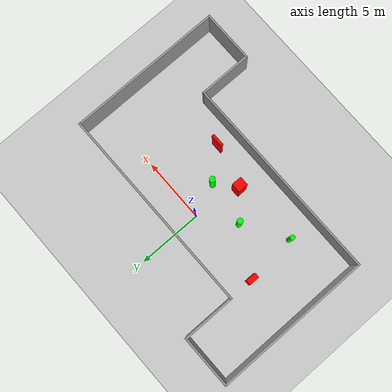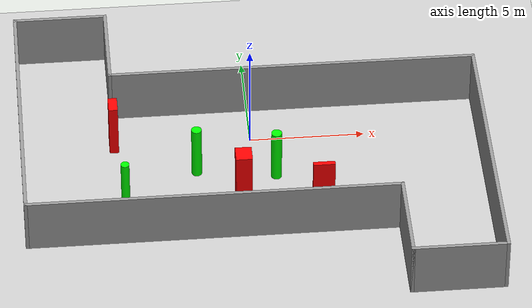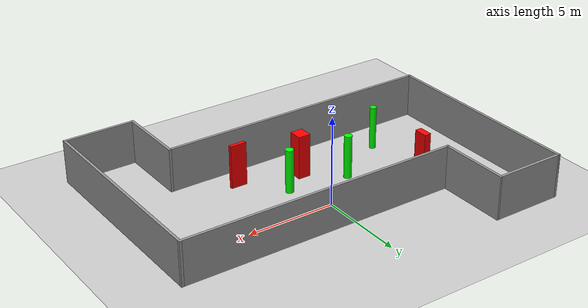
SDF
<sdf version="1.7">
 <world name="default">
  <light name="sun" type="directional">
   <pose>0 0 10 0 -0 0</pose>
   <diffuse>0.8 0.8 0.8 1</diffuse>
   <specular>0.2 0.2 0.2 1</specular>
   <attenuation>
    <range>1000</range>
    <constant>0.9</constant>
    <linear>0.01</linear>
    <quadratic>0.001</quadratic>
   </attenuation>
   <direction>-0.5 0.1 -0.9</direction>
   <spot><inner_angle>0</inner_angle><outer_angle>0</outer_angle><falloff>0</falloff></spot>
  </light>
  <model name="ground_plane">
   <static>1</static>
   <link name="link">
    <collision name="collision">
     <geometry><plane><normal>0 0 1</normal><size>100 100</size></plane></geometry>
     <surface>
      <contact><collide_bitmask>65535</collide_bitmask></contact>
      <friction><ode><mu>100</mu><mu2>50</mu2></ode></friction>
     </surface>
    </collision>
    <visual name="visual">
     <cast_shadows>0</cast_shadows>
     <geometry><plane><normal>0 0 1</normal><size>100 100</size></plane></geometry>
     <material>
      <script><uri>file://media/materials/scripts/gazebo.material</uri><name>Gazebo/Grey</name></script>
     </material>
    </visual>
   </link>
  </model>
  <gravity>0 0 -9.8</gravity>
  <magnetic_field>6e-06 2.3e-05 -4.2e-05</magnetic_field>
  <atmosphere type="adiabatic"/>
  <physics type="ode">
   <max_step_size>0.001</max_step_size>
   <real_time_factor>1</real_time_factor>
   <real_time_update_rate>1000</real_time_update_rate>
  </physics>
  <scene><ambient>0.4 0.4 0.4 1</ambient><background>0.7 0.7 0.7 1</background><shadows>1</shadows></scene>
  <spherical_coordinates>
   <surface_model>EARTH_WGS84</surface_model>
   <latitude_deg>0</latitude_deg>
   <longitude_deg>0</longitude_deg>
   <elevation>0</elevation>
   <heading_deg>0</heading_deg>
  </spherical_coordinates>
  <model name="my_base_walls">
   <link name="Wall_13">
    <collision name="Wall_13_Collision">
     <geometry><box><size>12.15 0.15 2.5</size></box></geometry>
     <pose>0 0 1.25 0 -0 0</pose>
    </collision>
    <visual name="Wall_13_Visual">
     <pose>0 0 1.25 0 -0 0</pose>
     <geometry><box><size>12.15 0.15 2.5</size></box></geometry>
     <material>
      <script><uri>file://media/materials/scripts/gazebo.material</uri><name>Gazebo/Grey</name></script>
      <ambient>1 1 1 1</ambient>
     </material>
     <meta><layer>0</layer></meta>
    </visual>
    <pose>10 -2 0 0 -0 1.5708</pose>
   </link>
   <link name="Wall_15">
    <collision name="Wall_15_Collision">
     <geometry><box><size>16.15 0.15 2.5</size></box></geometry>
     <pose>0 0 1.25 0 -0 0</pose>
    </collision>
    <visual name="Wall_15_Visual">
     <pose>0 0 1.25 0 -0 0</pose>
     <geometry><box><size>16.15 0.15 2.5</size></box></geometry>
     <material>
      <script><uri>file://media/materials/scripts/gazebo.material</uri><name>Gazebo/Grey</name></script>
      <ambient>1 1 1 1</ambient>
     </material>
     <meta><layer>0</layer></meta>
    </visual>
    <pose>2 4 0 0 -0 3.14159</pose>
   </link>
   <link name="Wall_17">
    <collision name="Wall_17_Collision">
     <geometry><box><size>4.15 0.15 2.5</size></box></geometry>
     <pose>0 0 1.25 0 -0 0</pose>
    </collision>
    <visual name="Wall_17_Visual">
     <pose>0 0 1.25 0 -0 0</pose>
     <geometry><box><size>4.15 0.15 2.5</size></box></geometry>
     <material>
      <script><uri>file://media/materials/scripts/gazebo.material</uri><name>Gazebo/Grey</name></script>
      <ambient>1 1 1 1</ambient>
     </material>
     <meta><layer>0</layer></meta>
    </visual>
    <pose>6 -6 0 0 -0 -1.5708</pose>
   </link>
   <link name="Wall_19">
    <collision name="Wall_19_Collision">
     <geometry><box><size>12.15 0.15 2.5</size></box></geometry>
     <pose>0 0 1.25 0 -0 0</pose>
    </collision>
    <visual name="Wall_19_Visual">
     <pose>0 0 1.25 0 -0 0</pose>
     <geometry><box><size>12.15 0.15 2.5</size></box></geometry>
     <material>
      <script><uri>file://media/materials/scripts/gazebo.material</uri><name>Gazebo/Grey</name></script>
      <ambient>1 1 1 1</ambient>
     </material>
     <meta><layer>0</layer></meta>
    </visual>
    <pose>-10 2 0 0 -0 1.5708</pose>
   </link>
   <link name="Wall_21">
    <collision name="Wall_21_Collision">
     <geometry><box><size>4.15 0.15 2.5</size></box></geometry>
     <pose>0 0 1.25 0 -0 0</pose>
    </collision>
    <visual name="Wall_21_Visual">
     <pose>0 0 1.25 0 -0 0</pose>
     <geometry><box><size>4.15 0.15 2.5</size></box></geometry>
     <material>
      <script><uri>file://media/materials/scripts/gazebo.material</uri><name>Gazebo/Grey</name></script>
      <ambient>1 1 1 1</ambient>
     </material>
     <meta><layer>0</layer></meta>
    </visual>
    <pose>-8 8 0 0 -0 0</pose>
   </link>
   <link name="Wall_23">
    <collision name="Wall_23_Collision">
     <geometry><box><size>4.15 0.15 2.5</size></box></geometry>
     <pose>0 0 1.25 0 -0 0</pose>
    </collision>
    <visual name="Wall_23_Visual">
     <pose>0 0 1.25 0 -0 0</pose>
     <geometry><box><size>4.15 0.15 2.5</size></box></geometry>
     <material>
      <script><uri>file://media/materials/scripts/gazebo.material</uri><name>Gazebo/Grey</name></script>
      <ambient>1 1 1 1</ambient>
     </material>
     <meta><layer>0</layer></meta>
    </visual>
    <pose>-6 6 0 0 -0 -1.5708</pose>
   </link>
   <link name="Wall_25">
    <collision name="Wall_25_Collision">
     <geometry><box><size>4.15 0.15 2.5</size></box></geometry>
     <pose>0 0 1.25 0 -0 0</pose>
    </collision>
    <visual name="Wall_25_Visual">
     <pose>0 0 1.25 0 -0 0</pose>
     <geometry><box><size>4.15 0.15 2.5</size></box></geometry>
     <material>
      <script><uri>file://media/materials/scripts/gazebo.material</uri><name>Gazebo/Grey</name></script>
      <ambient>1 1 1 1</ambient>
     </material>
     <meta><layer>0</layer></meta>
    </visual>
    <pose>8 -8 0 0 -0 0</pose>
   </link>
   <link name="Wall_9">
    <collision name="Wall_9_Collision">
     <geometry><box><size>16.15 0.15 2.5</size></box></geometry>
     <pose>0 0 1.25 0 -0 0</pose>
    </collision>
    <visual name="Wall_9_Visual">
     <pose>0 0 1.25 0 -0 0</pose>
     <geometry><box><size>16.15 0.15 2.5</size></box></geometry>
     <material>
      <script><uri>file://media/materials/scripts/gazebo.material</uri><name>Gazebo/Grey</name></script>
      <ambient>1 1 1 1</ambient>
     </material>
     <meta><layer>0</layer></meta>
    </visual>
    <pose>-2 -4 0 0 -0 3.14159</pose>
   </link>
   <static>1</static>
   <pose>-0 -2 0 0 -0 0</pose>
  </model>
  <model name="cylinder1">
   <static>1</static>
   <link name="link">
    <inertial>
     <mass>1</mass>
     <inertia><ixx>0.5</ixx><ixy>0</ixy><ixz>0</ixz><iyy>0.5</iyy><iyz>0</iyz><izz>1</izz></inertia>
    </inertial>
    <collision name="collision">
     <geometry><cylinder><radius>0.18458940106355998</radius><length>2.5</length></cylinder></geometry>
    </collision>
    <visual name="visual">
     <geometry><cylinder><radius>0.18458940106355998</radius><length>2.5</length></cylinder></geometry>
     <material>
      <ambient>0 1 0 1</ambient>
      <diffuse>0 1 0 1</diffuse>
      <specular>0.1 0.1 0.1 1</specular>
      <emissive>0 0 0 0</emissive>
     </material>
    </visual>
   </link>
   <pose>-5.671812436767182 -3.8553374460154126 1.25 0 0 0</pose>
  </model>
  <model name="cylinder2">
   <static>1</static>
   <link name="link">
    <inertial>
     <mass>1</mass>
     <inertia><ixx>0.5</ixx><ixy>0</ixy><ixz>0</ixz><iyy>0.5</iyy><iyz>0</iyz><izz>1</izz></inertia>
    </inertial>
    <collision name="collision">
     <geometry><cylinder><radius>0.22359820533462704</radius><length>2.5</length></cylinder></geometry>
    </collision>
    <visual name="visual">
     <geometry><cylinder><radius>0.22359820533462704</radius><length>2.5</length></cylinder></geometry>
     <material>
      <ambient>0 1 0 1</ambient>
      <diffuse>0 1 0 1</diffuse>
      <specular>0.1 0.1 0.1 1</specular>
      <emissive>0 0 0 0</emissive>
     </material>
    </visual>
   </link>
   <pose>-2.476901205112191 -1.9120467316839296 1.25 0 0 0</pose>
  </model>
  <model name="cylinder3">
   <static>1</static>
   <link name="link">
    <inertial>
     <mass>1</mass>
     <inertia><ixx>0.5</ixx><ixy>0</ixy><ixz>0</ixz><iyy>0.5</iyy><iyz>0</iyz><izz>1</izz></inertia>
    </inertial>
    <collision name="collision">
     <geometry><cylinder><radius>0.23007606994425683</radius><length>2.5</length></cylinder></geometry>
    </collision>
    <visual name="visual">
     <geometry><cylinder><radius>0.23007606994425683</radius><length>2.5</length></cylinder></geometry>
     <material>
      <ambient>0 1 0 1</ambient>
      <diffuse>0 1 0 1</diffuse>
      <specular>0.1 0.1 0.1 1</specular>
      <emissive>0 0 0 0</emissive>
     </material>
    </visual>
   </link>
   <pose>0.9521270231134285 -2.3951932484725624 1.25 0 0 0</pose>
  </model>
  <model name="box1">
   <static>1</static>
   <link name="link">
    <inertial>
     <mass>1</mass>
     <inertia><ixx>0.083</ixx><ixy>0</ixy><ixz>0</ixz><iyy>0.083</iyy><iyz>0</iyz><izz>0.083</izz></inertia>
    </inertial>
    <collision name="collision">
     <geometry><box><size>0.3987394572391836 0.7909039357555299 2.5</size></box></geometry>
    </collision>
    <visual name="visual">
     <geometry><box><size>0.3987394572391836 0.7909039357555299 2.5</size></box></geometry>
     <material>
      <ambient>1 0 0 1</ambient>
      <diffuse>1 0 0 1</diffuse>
      <specular>0.1 0.1 0.1 1</specular>
      <emissive>0 0 0 0</emissive>
     </material>
    </visual>
    <sensor name="my_contact" type="contact">
     <contact><collision>box_collision</collision><topic>__default_topic__</topic></contact>
    </sensor>
   </link>
   <pose>-5.978808111102747 0.048535434640823105 1.25 0 0 0</pose>
  </model>
  <model name="box2">
   <static>1</static>
   <link name="link">
    <inertial>
     <mass>1</mass>
     <inertia><ixx>0.083</ixx><ixy>0</ixy><ixz>0</ixz><iyy>0.083</iyy><iyz>0</iyz><izz>0.083</izz></inertia>
    </inertial>
    <collision name="collision">
     <geometry><box><size>0.7092491347423768 0.7797854611564717 2.5</size></box></geometry>
    </collision>
    <visual name="visual">
     <geometry><box><size>0.7092491347423768 0.7797854611564717 2.5</size></box></geometry>
     <material>
      <ambient>1 0 0 1</ambient>
      <diffuse>1 0 0 1</diffuse>
      <specular>0.1 0.1 0.1 1</specular>
      <emissive>0 0 0 0</emissive>
     </material>
    </visual>
    <sensor name="my_contact" type="contact">
     <contact><collision>box_collision</collision><topic>__default_topic__</topic></contact>
    </sensor>
   </link>
   <pose>-0.5642995614442103 -3.5792184270881418 1.25 0 0 0</pose>
  </model>
  <model name="box3">
   <static>1</static>
   <link name="link">
    <inertial>
     <mass>1</mass>
     <inertia><ixx>0.083</ixx><ixy>0</ixy><ixz>0</ixz><iyy>0.083</iyy><iyz>0</iyz><izz>0.083</izz></inertia>
    </inertial>
    <collision name="collision">
     <geometry><box><size>0.9461669786603555 0.20242599841614914 2.5</size></box></geometry>
    </collision>
    <visual name="visual">
     <geometry><box><size>0.9461669786603555 0.20242599841614914 2.5</size></box></geometry>
     <material>
      <ambient>1 0 0 1</ambient>
      <diffuse>1 0 0 1</diffuse>
      <specular>0.1 0.1 0.1 1</specular>
      <emissive>0 0 0 0</emissive>
     </material>
    </visual>
    <sensor name="my_contact" type="contact">
     <contact><collision>box_collision</collision><topic>__default_topic__</topic></contact>
    </sensor>
   </link>
   <pose>2.8099831718328314 -4.477727136754959 1.25 0 0 0</pose>
  </model>
 </world>
</sdf>
